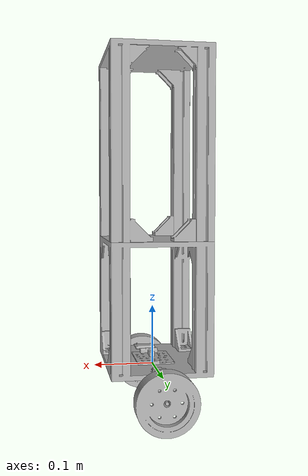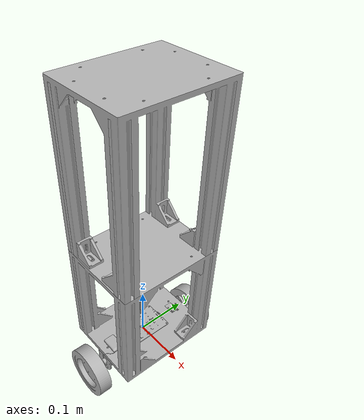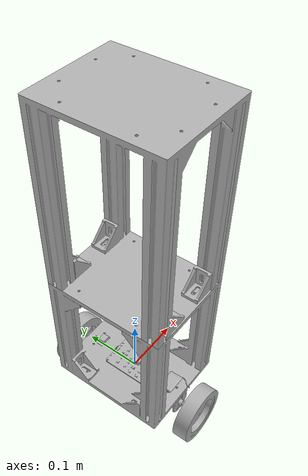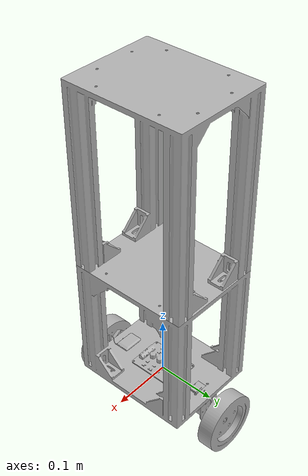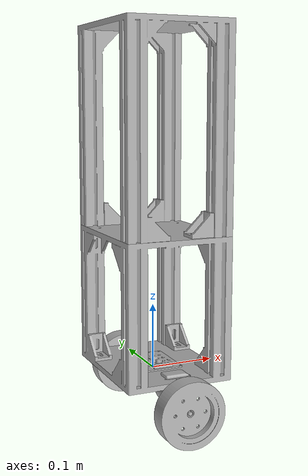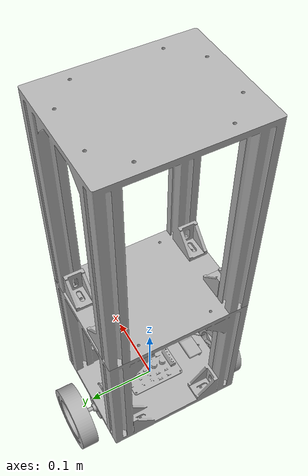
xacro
<?xml version="1.0" ?>
<robot name="sf_bot" xmlns:xacro="http://www.ros.org/wiki/xacro">

<xacro:include filename="$(find sf_bot_description)/urdf/materials.xacro" />
<xacro:include filename="$(find sf_bot_description)/urdf/sf_bot.gazebo" />

<link name="base_footprint"/>
<link name="base_link">
  <inertial>
    <origin xyz="0.00011931762984611134 5.725071583357913e-07 0.107864507793266" rpy="0 0 0"/>
    <mass value="0.9950315859189844"/>
    <inertia ixx="0.013071" iyy="0.011583" izz="0.007665" ixy="1e-06" iyz="0.0" ixz="-1e-05"/>
  </inertial>
  <visual>
    <origin xyz="0 0 0" rpy="0 0 0"/>
    <geometry>
      <mesh filename="file://$(find sf_bot_description)/meshes/base_link.stl" scale="0.001 0.001 0.001"/>
    </geometry>
    <material name="silver"/>
  </visual>
  <collision>
    <origin xyz="0 0 0" rpy="0 0 0"/>
    <geometry>
      <mesh filename="file://$(find sf_bot_description)/meshes/base_link.stl" scale="0.001 0.001 0.001"/>
    </geometry>
  </collision>
</link>

<link name="motor_right_1">
  <inertial>
    <origin xyz="-1.0196434290534508e-06 0.0020948107094494323 -0.021749702787001394" rpy="0 0 0"/>
    <mass value="0.40922971045827883"/>
    <inertia ixx="0.000176" iyy="6.3e-05" izz="0.000172" ixy="-0.0" iyz="-1e-06" ixz="-0.0"/>
  </inertial>
  <visual>
    <origin xyz="-1e-06 0.075002 -0.0" rpy="0 0 0"/>
    <geometry>
      <mesh filename="file://$(find sf_bot_description)/meshes/motor_right_1.stl" scale="0.001 0.001 0.001"/>
    </geometry>
    <material name="silver"/>
  </visual>
  <collision>
    <origin xyz="-1e-06 0.075002 -0.0" rpy="0 0 0"/>
    <geometry>
      <mesh filename="file://$(find sf_bot_description)/meshes/motor_right_1.stl" scale="0.001 0.001 0.001"/>
    </geometry>
  </collision>
</link>

<link name="motor_left_1">
  <inertial>
    <origin xyz="-1.0196434290782216e-06 -0.0020948107094494184 -0.0217497027870014" rpy="0 0 0"/>
    <mass value="0.40922971045827883"/>
    <inertia ixx="0.000176" iyy="6.3e-05" izz="0.000172" ixy="0.0" iyz="1e-06" ixz="-0.0"/>
  </inertial>
  <visual>
    <origin xyz="-1e-06 -0.075002 -0.0" rpy="0 0 0"/>
    <geometry>
      <mesh filename="file://$(find sf_bot_description)/meshes/motor_left_1.stl" scale="0.001 0.001 0.001"/>
    </geometry>
    <material name="silver"/>
  </visual>
  <collision>
    <origin xyz="-1e-06 -0.075002 -0.0" rpy="0 0 0"/>
    <geometry>
      <mesh filename="file://$(find sf_bot_description)/meshes/motor_left_1.stl" scale="0.001 0.001 0.001"/>
    </geometry>
  </collision>
</link>

<link name="imu_link">
  <inertial>
    <origin xyz="0.0 0.0 -0.00165" rpy="0 0 0"/>
    <mass value="0.0090066504"/>
    <inertia ixx="0.0" iyy="0.0" izz="1e-06" ixy="0.0" iyz="-0.0" ixz="-0.0"/>
  </inertial>
  <visual>
    <origin xyz="-0.0 -0.0 -0.0" rpy="0 0 0"/>
    <geometry>
      <mesh filename="file://$(find sf_bot_description)/meshes/imu_link_1.stl" scale="0.001 0.001 0.001"/>
    </geometry>
    <material name="silver"/>
  </visual>
  <collision>
    <origin xyz="-0.0 -0.0 -0.0" rpy="0 0 0"/>
    <geometry>
      <mesh filename="file://$(find sf_bot_description)/meshes/imu_link_1.stl" scale="0.001 0.001 0.001"/>
    </geometry>
  </collision>
</link>

<link name="motor_driver_1">
  <inertial>
    <origin xyz="0.0001036913880996842 -0.004835776222540905 0.001964330363631306" rpy="0 0 0"/>
    <mass value="0.10665515793282898"/>
    <inertia ixx="6.5e-05" iyy="2.8e-05" izz="9.2e-05" ixy="0.0" iyz="2e-06" ixz="-0.0"/>
  </inertial>
  <visual>
    <origin xyz="-0.0 -0.0 -0.008" rpy="0 0 0"/>
    <geometry>
      <mesh filename="file://$(find sf_bot_description)/meshes/motor_driver_1.stl" scale="0.001 0.001 0.001"/>
    </geometry>
    <material name="silver"/>
  </visual>
  <collision>
    <origin xyz="-0.0 -0.0 -0.008" rpy="0 0 0"/>
    <geometry>
      <mesh filename="file://$(find sf_bot_description)/meshes/motor_driver_1.stl" scale="0.001 0.001 0.001"/>
    </geometry>
  </collision>
</link>

<link name="node_mcu_1">
  <inertial>
    <origin xyz="0.0023749741999873767 4.290503520520961e-08 0.0011611203050715911" rpy="0 0 0"/>
    <mass value="0.004427527956579565"/>
    <inertia ixx="0.0" iyy="0.0" izz="0.0" ixy="0.0" iyz="0.0" ixz="-0.0"/>
  </inertial>
  <visual>
    <origin xyz="-0.002051 -0.075002 -0.008" rpy="0 0 0"/>
    <geometry>
      <mesh filename="file://$(find sf_bot_description)/meshes/node_mcu_1.stl" scale="0.001 0.001 0.001"/>
    </geometry>
    <material name="silver"/>
  </visual>
  <collision>
    <origin xyz="-0.002051 -0.075002 -0.008" rpy="0 0 0"/>
    <geometry>
      <mesh filename="file://$(find sf_bot_description)/meshes/node_mcu_1.stl" scale="0.001 0.001 0.001"/>
    </geometry>
  </collision>
</link>

<link name="li_ion_battery_1">
  <inertial>
    <origin xyz="0.0011956362304908772 -7.000827092053241e-05 0.0029366620313676928" rpy="0 0 0"/>
    <mass value="0.034962326993171845"/>
    <inertia ixx="2e-06" iyy="3e-06" izz="5e-06" ixy="0.0" iyz="0.0" ixz="-0.0"/>
  </inertial>
  <visual>
    <origin xyz="-1e-06 0.075002 -0.008" rpy="0 0 0"/>
    <geometry>
      <mesh filename="file://$(find sf_bot_description)/meshes/li_ion_battery_1.stl" scale="0.001 0.001 0.001"/>
    </geometry>
    <material name="silver"/>
  </visual>
  <collision>
    <origin xyz="-1e-06 0.075002 -0.008" rpy="0 0 0"/>
    <geometry>
      <mesh filename="file://$(find sf_bot_description)/meshes/li_ion_battery_1.stl" scale="0.001 0.001 0.001"/>
    </geometry>
  </collision>
</link>

<link name="top_base_1">
  <inertial>
    <origin xyz="-0.08143284697619828 0.1013870830223493 0.20797423368380727" rpy="0 0 0"/>
    <mass value="0.7916231280930065"/>
    <inertia ixx="0.01404" iyy="0.011997" izz="0.007394" ixy="2e-06" iyz="-1e-06" ixz="-2e-06"/>
  </inertial>
  <visual>
    <origin xyz="-0.081414 0.101414 -0.216" rpy="0 0 0"/>
    <geometry>
      <mesh filename="file://$(find sf_bot_description)/meshes/top_base_1.stl" scale="0.001 0.001 0.001"/>
    </geometry>
    <material name="silver"/>
  </visual>
  <collision>
    <origin xyz="-0.081414 0.101414 -0.216" rpy="0 0 0"/>
    <geometry>
      <mesh filename="file://$(find sf_bot_description)/meshes/top_base_1.stl" scale="0.001 0.001 0.001"/>
    </geometry>
  </collision>
</link>

<link name="right_wheel_1">
  <inertial>
    <origin xyz="2.952122497918742e-07 0.00215796946669089 2.5919413156050286e-07" rpy="0 0 0"/>
    <mass value="1.020798021407396"/>
    <inertia ixx="0.000884" iyy="0.00167" izz="0.000884" ixy="0.0" iyz="0.0" ixz="0.0"/>
  </inertial>
  <visual>
    <origin xyz="1.2e-05 0.1322 0.029064" rpy="0 0 0"/>
    <geometry>
      <mesh filename="file://$(find sf_bot_description)/meshes/right_wheel_1.stl" scale="0.001 0.001 0.001"/>
    </geometry>
    <material name="silver"/>
  </visual>
  <collision>
    <origin xyz="1.2e-05 0.1322 0.029064" rpy="0 0 0"/>
    <geometry>
      <mesh filename="file://$(find sf_bot_description)/meshes/right_wheel_1.stl" scale="0.001 0.001 0.001"/>
    </geometry>
  </collision>
</link>

<link name="left_wheel_1">
  <inertial>
    <origin xyz="2.952122374692592e-07 -0.0021579694666909455 2.5919412152339283e-07" rpy="0 0 0"/>
    <mass value="1.0207980214073975"/>
    <inertia ixx="0.000884" iyy="0.00167" izz="0.000884" ixy="-0.0" iyz="-0.0" ixz="-0.0"/>
  </inertial>
  <visual>
    <origin xyz="1.2e-05 -0.1322 0.029064" rpy="0 0 0"/>
    <geometry>
      <mesh filename="file://$(find sf_bot_description)/meshes/left_wheel_1.stl" scale="0.001 0.001 0.001"/>
    </geometry>
    <material name="silver"/>
  </visual>
  <collision>
    <origin xyz="1.2e-05 -0.1322 0.029064" rpy="0 0 0"/>
    <geometry>
      <mesh filename="file://$(find sf_bot_description)/meshes/left_wheel_1.stl" scale="0.001 0.001 0.001"/>
    </geometry>
  </collision>
</link>

<joint name="fixed" type="fixed">
  <origin xyz="0 0 0" rpy="0 0 0"/>
  <parent link="base_footprint"/>
  <child link="base_link"/>
</joint>

<joint name="Rigid 1" type="fixed">
  <origin xyz="1e-06 -0.075002 0.0" rpy="0 0 0"/>
  <parent link="base_link"/>
  <child link="motor_right_1"/>
</joint>

<joint name="Rigid 2" type="fixed">
  <origin xyz="1e-06 0.075002 0.0" rpy="0 0 0"/>
  <parent link="base_link"/>
  <child link="motor_left_1"/>
</joint>

<joint name="Rigid 3" type="fixed">
  <origin xyz="0.0 0.0 0.0" rpy="0 0 0"/>
  <parent link="base_link"/>
  <child link="imu_link"/>
</joint>

<joint name="Rigid 4" type="fixed">
  <origin xyz="0.0 0.0 0.008" rpy="0 0 0"/>
  <parent link="base_link"/>
  <child link="motor_driver_1"/>
</joint>

<joint name="Rigid 5" type="fixed">
  <origin xyz="0.002051 0.075002 0.008" rpy="0 0 0"/>
  <parent link="base_link"/>
  <child link="node_mcu_1"/>
</joint>

<joint name="Rigid 6" type="fixed">
  <origin xyz="1e-06 -0.075002 0.008" rpy="0 0 0"/>
  <parent link="base_link"/>
  <child link="li_ion_battery_1"/>
</joint>

<joint name="Rigid 7" type="fixed">
  <origin xyz="0.081414 -0.101414 0.216" rpy="0 0 0"/>
  <parent link="base_link"/>
  <child link="top_base_1"/>
</joint>

<joint name="left_wheel_joint" type="continuous">
  <origin xyz="-1.3e-05 -0.057198 -0.029064" rpy="0 0 0"/>
  <parent link="motor_right_1"/>
  <child link="right_wheel_1"/>
  <axis xyz="-0.000205 1.0 0.0"/>
</joint>

<joint name="right_wheel_joint" type="continuous">
  <origin xyz="-1.3e-05 0.057198 -0.029064" rpy="0 0 0"/>
  <parent link="motor_left_1"/>
  <child link="left_wheel_1"/>
  <axis xyz="0.000205 1.0 0.0"/>
</joint>

</robot>

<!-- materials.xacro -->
<robot name="sf_bot" xmlns:xacro="http://www.ros.org/wiki/xacro" >

<material name="silver">
  <color rgba="0.700 0.700 0.700 1.000"/>
</material>

</robot>

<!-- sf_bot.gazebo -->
<robot name="sf_bot" xmlns:xacro="http://www.ros.org/wiki/xacro" >

<xacro:property name="body_color" value="Gazebo/Silver" />

<gazebo>
  <plugin name="control" filename="libgazebo_ros_control.so"/>
</gazebo>
<gazebo reference="base_link">
  <material name="body_color" value="Gazebo/Orange"></material>
  <mu1>0.2</mu1>
  <mu2>0.2</mu2>
  <self_collide>true</self_collide>
  <gravity>true</gravity>
</gazebo>

<gazebo reference="motor_right_1">
  <material>${body_color}</material>
  <mu1>0.2</mu1>
  <mu2>0.2</mu2>
  <self_collide>true</self_collide>
</gazebo>

<gazebo reference="motor_left_1">
  <material>${body_color}</material>
  <mu1>0.2</mu1>
  <mu2>0.2</mu2>
  <self_collide>true</self_collide>
</gazebo>

<gazebo reference="imu_link">
  <material>${body_color}</material>
  <mu1>0.2</mu1>
  <mu2>0.2</mu2>
  <self_collide>true</self_collide>
</gazebo>

<gazebo reference="motor_driver_1">
  <material name="body_color" value="Gazebo/Black"></material>
  <mu1>0.2</mu1>
  <mu2>0.2</mu2>
  <self_collide>true</self_collide>
</gazebo>

<gazebo reference="node_mcu_1">
  <material>${body_color}</material>
  <mu1>0.2</mu1>
  <mu2>0.2</mu2>
  <self_collide>true</self_collide>
</gazebo>

<gazebo reference="li_ion_battery_1">
  <material name="body_color" value="Gazebo/Orange"></material>
  <mu1>0.2</mu1>
  <mu2>0.2</mu2>
  <self_collide>true</self_collide>
</gazebo>

<gazebo reference="top_base_1">
  <material name="body_color" value="Gazebo/Blue"></material>
  <mu1>0.2</mu1>
  <mu2>0.2</mu2>
  <self_collide>true</self_collide>
</gazebo>

<gazebo reference="right_wheel_1">
  <material name="body_color" value="Gazebo/Black"></material>
  <mu1>0.2</mu1>
  <mu2>0.2</mu2>
  <self_collide>true</self_collide>
</gazebo>

<gazebo reference="left_wheel_1">
  <material name="body_color" value="Gazebo/Black"></material>
  <mu1>0.2</mu1>
  <mu2>0.2</mu2>
  <self_collide>true</self_collide>
</gazebo>

<!--  SENSOR SETUP -->
<gazebo reference="imu_link">
  <gravity>true</gravity>
  <sensor name="imu_sensor" type="imu">
    <always_on>true</always_on>
    <update_rate>30</update_rate>
    <visualize>true</visualize>
    <topic>__default_topic__</topic>
    <plugin filename="libgazebo_ros_imu_sensor.so" name="imu_plugin">
      <ros>
          <remapping>~/out:=imu</remapping>
      </ros>
      <topic_name>imu</topic_name>
      <body_name>imu_link</body_name>
      <update_rate_HZ>10.0</update_rate_HZ>
      <gaussian_noise>0.0</gaussian_noise>
      <xyzOffset>0 0 0</xyzOffset>
      <rpyOffset>0 0 0</rpyOffset>
      <frame_name>imu_link</frame_name>
      <initial_orientation_as_reference>false</initial_orientation_as_reference>
    </plugin>
    <pose>0 0 0 0 0 0</pose>
  </sensor>
</gazebo>

<!-- Odometry Plugin -->
<gazebo>
  <plugin name="sf_bot_Odometry" filename="libgazebo_ros_p3d.so">
    <ros>
      <remapping>odom:=unfiltered/odometry</remapping>
    </ros>
    <body_name>base_footprint</body_name>
    <frame_name>odom</frame_name>
    <update_rate>30.0</update_rate>
    <gaussian_noise>0.0001</gaussian_noise>
  </plugin>
</gazebo>

<!-- Diff Drive Controller Setup -->
<gazebo>
  <plugin name="diff_drive_controller" filename="libgazebo_ros_diff_drive.so">

    <!-- wheels -->
    <num_wheel_pairs>1</num_wheel_pairs>
    <left_joint>left_wheel_joint</left_joint>
    <right_joint>right_wheel_joint</right_joint>

    <!-- kinematics -->
    <wheel_separation>0.03</wheel_separation>
    <wheel_diameter>0.065</wheel_diameter>
    <max_wheel_torque>2.5</max_wheel_torque>
    <max_wheel_acceleration>10.0</max_wheel_acceleration>

    <!-- odometry  -->
    <odometry_source>1</odometry_source>
    <odometry_frame>odom</odometry_frame>
    <robot_base_frame>base_footprint</robot_base_frame>

    <!-- topic & re remappings -->
    <ros>
      <remapping>/cmd_vel:=cmd_vel</remapping>
      <remapping>/odom:=odom_pose</remapping>
    </ros>

    <publish_odom>true</publish_odom>
    <publish_odom_tf>true</publish_odom_tf>
    <publish_wheel_tf>true</publish_wheel_tf>
    <update_rate>100.0</update_rate>
  </plugin>
</gazebo>

<!-- JOINT Feedback -->
<gazebo>
  <plugin name="wheel_joint_state_publisher" filename="libgazebo_ros_joint_state_publisher.so">
    <ros>
      <remapping>joint_states:=joint_states</remapping>
    </ros>
    <update_rate>2.0</update_rate>
    <joint_name>left_wheel_joint</joint_name>
    <joint_name>right_wheel_joint</joint_name>
  </plugin>
</gazebo>

</robot>
